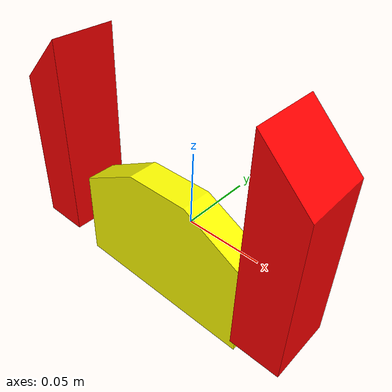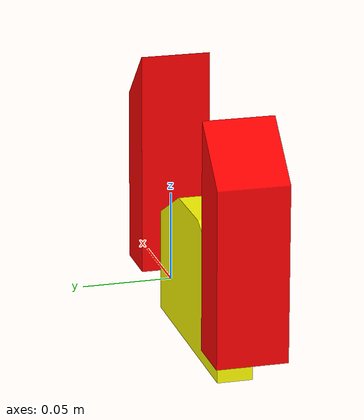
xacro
<?xml version="1.0"?>
<robot xmlns:xacro="http://www.ros.org/wiki/xacro">

    <xacro:arg name="link1_x" default="0.038"/>
    <xacro:arg name="link1_y" default="0"/>
    <xacro:arg name="link1_z" default="0.038"/>
    <xacro:arg name="link1_joint_x" default="0.04"/>
    <xacro:arg name="link1_joint_z" default="0.008"/>

    <link name="gripper_link_base">
        <inertial>
            <mass value="3.635"/>
            <origin xyz="4e-06   -0.001     0.082"/>
            <inertia ixx="0.02216" ixy="5.8e-06" ixz="6.2e-06" iyy="0.02"
                iyz="-5.3e-05"
                izz="0.02"/>
        </inertial>
        <collision>
            <geometry>
                <cylinder radius="0.08" length="0.2"/>
            </geometry>
            </collision>
        <visual>
            <origin rpy="1.571 0 0" xyz="0 0 0" />
            <geometry>
                <mesh filename="file:///$(find arm_02)/description/meshes/gripA/gripA_0.stl"
                    scale="0.004 0.004 0.004" />
            </geometry>
            <material name="yellow">
                <color rgba="1 1 0 1"/>
            </material>
        </visual>
    </link>

    <link name="gripper_link_left_1">
        <inertial>
            <mass value="3.635"/>
            <origin xyz="4e-06   -0.001     0.082"/>
            <inertia ixx="0.02216" ixy="5.8e-06" ixz="6.2e-06" iyy="0.02"
                iyz="-5.3e-05"
                izz="0.02"/>
        </inertial>
        <collision>
            <geometry>
                <cylinder radius="0.08" length="0.2"/>
            </geometry>
            </collision>
        <visual>
            <origin rpy="1.571 0 0" xyz="-$(arg link1_x) $(arg link1_y) $(arg link1_z)" />
            <!-- origin rpy="1.571 0 0" xyz="-0.036 0 0.038" /-->
            <geometry>
                <mesh filename="file:///$(find arm_02)/description/meshes/gripA/gripA_L_1.stl"
                    scale="0.004 0.004 0.004" />
            </geometry>
            <material name="red">
                <color rgba="1 0 0 1"/>
            </material>
        </visual>

    </link>

    <joint name="gripper_joint_left_1" type="prismatic">
        <parent link="gripper_link_base" />
        <child link="gripper_link_left_1" />
        <origin rpy="0 0 0" xyz="-$(arg link1_joint_x) $(arg link1_y) $(arg link1_joint_z)" />
        <!-- origin rpy="0 0 0" xyz="-0.036 0 -0.04" / -->
        <axis xyz="1 0 0" />
        <limit effort="411" lower="-0.04" upper="0.06" velocity="0.05"/>
        <dynamics damping="60.0" friction="4.0" />
    </joint>

    <link name="gripper_link_right_1">
        <inertial>
            <mass value="3.635"/>
            <origin xyz="4e-06   -0.001     0.082"/>
            <inertia ixx="0.02216" ixy="5.8e-06" ixz="6.2e-06" iyy="0.02"
                iyz="-5.3e-05"
                izz="0.02"/>
        </inertial>
        <collision>
            <geometry>
                <cylinder radius="0.08" length="0.2"/>
            </geometry>
            </collision>
        <visual>
            <origin rpy="1.571 0 0" xyz="$(arg link1_x) $(arg link1_y) $(arg link1_z)" />
            <!-- origin rpy="1.571 0 0" xyz="-0.036 0 0.038" /-->
            <geometry>
                <mesh filename="file:///$(find arm_02)/description/meshes/gripA/gripA_R_1.stl"
                    scale="0.004 0.004 0.004" />
            </geometry>
            <material name="red">
                <color rgba="1 0 0 1"/>
            </material>
        </visual>

    </link>

    <joint name="gripper_joint_right_1" type="prismatic">
        <parent link="gripper_link_base" />
        <child link="gripper_link_right_1" />
        <origin rpy="0 0 0" xyz="$(arg link1_joint_x) $(arg link1_y) $(arg link1_joint_z)" />
        <!-- origin rpy="0 0 0" xyz="-0.036 0 -0.04" / -->
        <axis xyz="1 0 0" />
        <limit effort="411" lower="-0.06" upper="0.04" velocity="0.05"/>
        <dynamics damping="60.0" friction="4.0" />

        <!-- Mimic the movement of gripper_joint_left_1 -->
        <mimic joint="gripper_joint_left_1" multiplier="-1" offset="0" />

    </joint>

    <!-- Gazebo colors -->

    <gazebo reference="gripper_link_base">
        <material>Gazebo/Yellow</material>
    </gazebo>
    <gazebo reference="gripper_link_left_1">
        <material>Gazebo/Red</material>
    </gazebo>
    <gazebo reference="gripper_link_right_1">
        <material>Gazebo/Red</material>
    </gazebo>

</robot>
